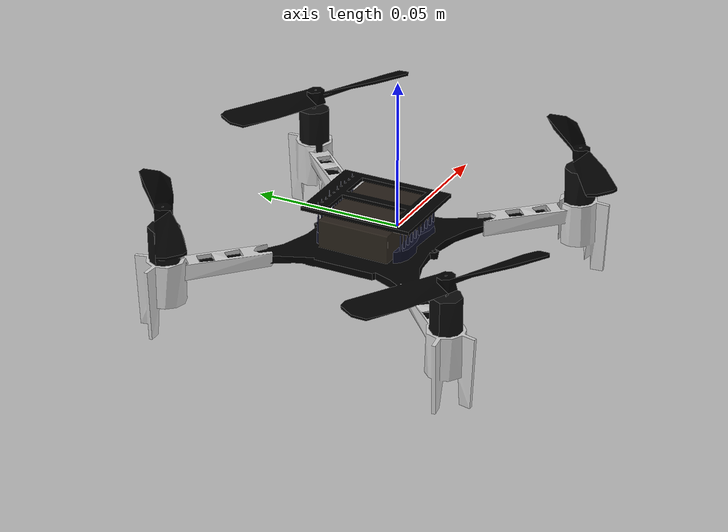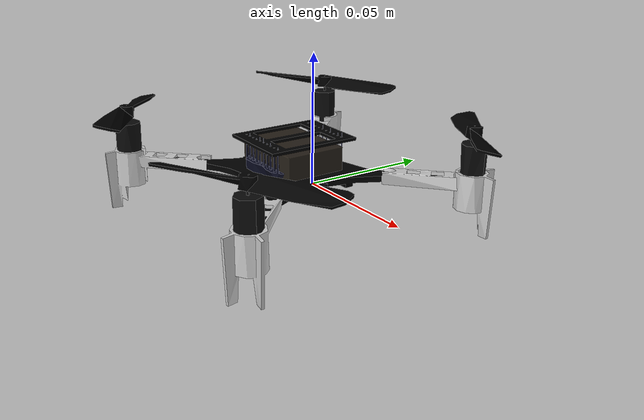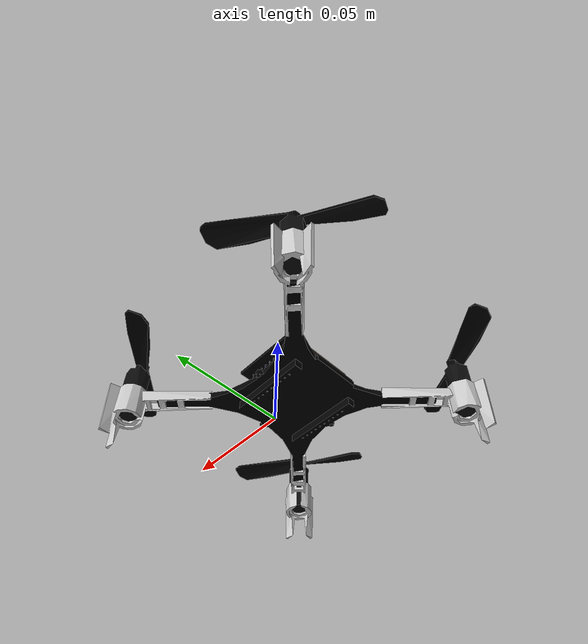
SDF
<?xml version="1.0" ?>
<sdf version="1.7">
    <model name="crazyflie_actor">
        <pose>0 0 0.0 0 0 3.14</pose>
        <link name="crazyflie/body">
        <visual name="crazyflie/body_visual">
            <pose frame="">0 0 0 0 -0 0</pose>
            <geometry>
                <mesh>
                    <scale>1 1 1</scale>
                    <uri>model://crazyflie/meshes/crazyflie.dae</uri>
                </mesh>
            </geometry>
        </visual>
        </link>
    </model>
</sdf>
